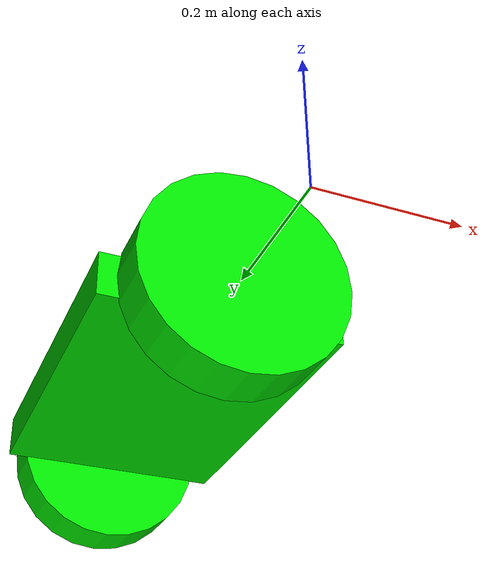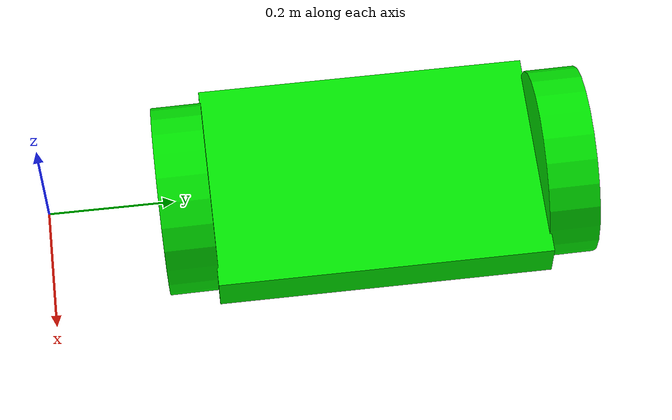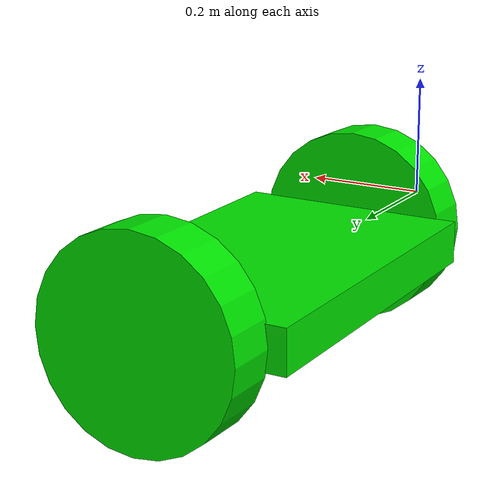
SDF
<?xml version='1.0'?>
<sdf version='1.6'>
  <model name='Green_Robot'>
    <link name='link_0'>
      <pose frame=''>0 0.519998 0.00436 0 -0 0</pose>
      <inertial>
        <mass>0.0120762</mass>
        <inertia>
          <ixx>0.000284555</ixx>
          <ixy>0</ixy>
          <ixz>0</ixz>
          <iyy>0.000129171</iyy>
          <iyz>0</iyz>
          <izz>0.000405236</izz>
        </inertia>
        <pose frame=''>0 0 0 0 -0 0</pose>
      </inertial>
      <self_collide>0</self_collide>
      <kinematic>0</kinematic>
      <visual name='visual'>
        <pose frame=''>0 0 0 0 -0 0</pose>
        <geometry>
          <box>
            <size>0.352322 0.527763 0.064937</size>
          </box>
        </geometry>
        <material>
          <lighting>1</lighting>
          <script>
            <uri>file://media/materials/scripts/gazebo.material</uri>
            <name>Gazebo/Grey</name>
          </script>
          <ambient>0 0.9 0 1</ambient>
          <diffuse>0 0.9 0 1</diffuse>
          <specular>0.01 0.01 0.01 1</specular>
          <emissive>0 0 0 1</emissive>
          <shader type='vertex'>
            <normal_map>__default__</normal_map>
          </shader>
        </material>
        <cast_shadows>1</cast_shadows>
        <transparency>0</transparency>
      </visual>
      <collision name='collision'>
        <laser_retro>0</laser_retro>
        <max_contacts>10</max_contacts>
        <pose frame=''>0 0 0 0 -0 0</pose>
        <geometry>
          <box>
            <size>0.352322 0.527763 0.064937</size>
          </box>
        </geometry>
        <surface>
          <friction>
            <ode>
              <mu>1</mu>
              <mu2>1</mu2>
              <fdir1>0 0 0</fdir1>
              <slip1>0</slip1>
              <slip2>0</slip2>
            </ode>
            <torsional>
              <coefficient>1</coefficient>
              <patch_radius>0</patch_radius>
              <surface_radius>0</surface_radius>
              <use_patch_radius>1</use_patch_radius>
              <ode>
                <slip>0</slip>
              </ode>
            </torsional>
          </friction>
          <bounce>
            <restitution_coefficient>0</restitution_coefficient>
            <threshold>1e+06</threshold>
          </bounce>
          <contact>
            <collide_without_contact>0</collide_without_contact>
            <collide_without_contact_bitmask>1</collide_without_contact_bitmask>
            <collide_bitmask>1</collide_bitmask>
            <ode>
              <soft_cfm>0</soft_cfm>
              <soft_erp>0.2</soft_erp>
              <kp>1e+13</kp>
              <kd>1</kd>
              <max_vel>0.01</max_vel>
              <min_depth>0</min_depth>
            </ode>
            <bullet>
              <split_impulse>1</split_impulse>
              <split_impulse_penetration_threshold>-0.01</split_impulse_penetration_threshold>
              <soft_cfm>0</soft_cfm>
              <soft_erp>0.2</soft_erp>
              <kp>1e+13</kp>
              <kd>1</kd>
            </bullet>
          </contact>
        </surface>
      </collision>
    </link>
    <link name='link_1_clone'>
      <pose frame=''>0 0.781457 0.003711 -1.55458 0 0</pose>
      <inertial>
        <mass>0.00604226</mass>
        <inertia>
          <ixx>3.354e-05</ixx>
          <ixy>0</ixy>
          <ixz>0</ixz>
          <iyy>3.354e-05</iyy>
          <iyz>0</iyz>
          <izz>6.156e-05</izz>
        </inertia>
        <pose frame=''>0 0 0 0 -0 0</pose>
      </inertial>
      <self_collide>0</self_collide>
      <kinematic>0</kinematic>
      <visual name='visual'>
        <pose frame=''>0 0 0.04 0 -0 0</pose>
        <geometry>
          <cylinder>
            <radius>0.15</radius>
            <length>0.08</length>
          </cylinder>
        </geometry>
        <material>
          <lighting>1</lighting>
          <script>
            <uri>file://media/materials/scripts/gazebo.material</uri>
            <name>Gazebo/Grey</name>
          </script>
          <ambient>0 0.9 0 1</ambient>
          <diffuse>0 0.9 0 1</diffuse>
          <specular>0.01 0.01 0.01 1</specular>
          <emissive>0 0 0 1</emissive>
          <shader type='vertex'>
            <normal_map>__default__</normal_map>
          </shader>
        </material>
        <cast_shadows>1</cast_shadows>
        <transparency>0</transparency>
      </visual>
      <collision name='collision'>
        <laser_retro>0</laser_retro>
        <max_contacts>10</max_contacts>
        <pose frame=''>0 0 0.04 0 -0 0</pose>
        <geometry>
          <cylinder>
            <radius>0.15</radius>
            <length>0.08</length>
          </cylinder>
        </geometry>
        <surface>
          <friction>
            <ode>
              <mu>1</mu>
              <mu2>1</mu2>
              <fdir1>0 0 0</fdir1>
              <slip1>0</slip1>
              <slip2>0</slip2>
            </ode>
            <torsional>
              <coefficient>1</coefficient>
              <patch_radius>0</patch_radius>
              <surface_radius>0</surface_radius>
              <use_patch_radius>1</use_patch_radius>
              <ode>
                <slip>0</slip>
              </ode>
            </torsional>
          </friction>
          <bounce>
            <restitution_coefficient>0</restitution_coefficient>
            <threshold>1e+06</threshold>
          </bounce>
          <contact>
            <collide_without_contact>0</collide_without_contact>
            <collide_without_contact_bitmask>1</collide_without_contact_bitmask>
            <collide_bitmask>1</collide_bitmask>
            <ode>
              <soft_cfm>0</soft_cfm>
              <soft_erp>0.2</soft_erp>
              <kp>1e+13</kp>
              <kd>1</kd>
              <max_vel>0.01</max_vel>
              <min_depth>0</min_depth>
            </ode>
            <bullet>
              <split_impulse>1</split_impulse>
              <split_impulse_penetration_threshold>-0.01</split_impulse_penetration_threshold>
              <soft_cfm>0</soft_cfm>
              <soft_erp>0.2</soft_erp>
              <kp>1e+13</kp>
              <kd>1</kd>
            </bullet>
          </contact>
        </surface>
      </collision>
    </link>
    <link name='link_1_clone_clone'>
      <pose frame=''>0 0.178549 0.003711 -1.55458 0 0</pose>
      <inertial>
        <mass>0.00604226</mass>
        <inertia>
          <ixx>3.354e-05</ixx>
          <ixy>0</ixy>
          <ixz>0</ixz>
          <iyy>3.354e-05</iyy>
          <iyz>0</iyz>
          <izz>6.156e-05</izz>
        </inertia>
        <pose frame=''>0 0 0 0 -0 0</pose>
      </inertial>
      <self_collide>0</self_collide>
      <kinematic>0</kinematic>
      <visual name='visual'>
        <pose frame=''>0 0 0.04 0 -0 0</pose>
        <geometry>
          <cylinder>
            <radius>0.15</radius>
            <length>0.08</length>
          </cylinder>
        </geometry>
        <material>
          <lighting>1</lighting>
          <script>
            <uri>file://media/materials/scripts/gazebo.material</uri>
            <name>Gazebo/Grey</name>
          </script>
          <ambient>0 0.9 0 1</ambient>
          <diffuse>0 0.9 0 1</diffuse>
          <specular>0.01 0.01 0.01 1</specular>
          <emissive>0 0 0 1</emissive>
          <shader type='vertex'>
            <normal_map>__default__</normal_map>
          </shader>
        </material>
        <cast_shadows>1</cast_shadows>
        <transparency>0</transparency>
      </visual>
      <collision name='collision'>
        <laser_retro>0</laser_retro>
        <max_contacts>10</max_contacts>
        <pose frame=''>0 0 0.04 0 -0 0</pose>
        <geometry>
          <cylinder>
            <radius>0.15</radius>
            <length>0.08</length>
          </cylinder>
        </geometry>
        <surface>
          <friction>
            <ode>
              <mu>1</mu>
              <mu2>1</mu2>
              <fdir1>0 0 0</fdir1>
              <slip1>0</slip1>
              <slip2>0</slip2>
            </ode>
            <torsional>
              <coefficient>1</coefficient>
              <patch_radius>0</patch_radius>
              <surface_radius>0</surface_radius>
              <use_patch_radius>1</use_patch_radius>
              <ode>
                <slip>0</slip>
              </ode>
            </torsional>
          </friction>
          <bounce>
            <restitution_coefficient>0</restitution_coefficient>
            <threshold>1e+06</threshold>
          </bounce>
          <contact>
            <collide_without_contact>0</collide_without_contact>
            <collide_without_contact_bitmask>1</collide_without_contact_bitmask>
            <collide_bitmask>1</collide_bitmask>
            <ode>
              <soft_cfm>0</soft_cfm>
              <soft_erp>0.2</soft_erp>
              <kp>1e+13</kp>
              <kd>1</kd>
              <max_vel>0.01</max_vel>
              <min_depth>0</min_depth>
            </ode>
            <bullet>
              <split_impulse>1</split_impulse>
              <split_impulse_penetration_threshold>-0.01</split_impulse_penetration_threshold>
              <soft_cfm>0</soft_cfm>
              <soft_erp>0.2</soft_erp>
              <kp>1e+13</kp>
              <kd>1</kd>
            </bullet>
          </contact>
        </surface>
      </collision>
    </link>
    <joint name='link_0_JOINT_4' type='revolute'>
      <parent>link_0</parent>
      <child>link_1_clone</child>
      <pose frame=''>0 0 0 0 -0 0</pose>
      <axis>
        <xyz>1 0 0</xyz>
        <use_parent_model_frame>0</use_parent_model_frame>
        <limit>
          <lower>-1.79769e+308</lower>
          <upper>1.79769e+308</upper>
          <effort>-1</effort>
          <velocity>-1</velocity>
        </limit>
        <dynamics>
          <spring_reference>0</spring_reference>
          <spring_stiffness>0</spring_stiffness>
          <damping>0</damping>
          <friction>0</friction>
        </dynamics>
      </axis>
      <physics>
        <ode>
          <limit>
            <cfm>0</cfm>
            <erp>0.2</erp>
          </limit>
          <suspension>
            <cfm>0</cfm>
            <erp>0.2</erp>
          </suspension>
        </ode>
      </physics>
    </joint>
    <joint name='link_0_JOINT_5' type='revolute'>
      <parent>link_0</parent>
      <child>link_1_clone_clone</child>
      <pose frame=''>0 0 0 0 -0 0</pose>
      <axis>
        <xyz>1 0 0</xyz>
        <use_parent_model_frame>0</use_parent_model_frame>
        <limit>
          <lower>-1.79769e+308</lower>
          <upper>1.79769e+308</upper>
          <effort>-1</effort>
          <velocity>-1</velocity>
        </limit>
        <dynamics>
          <spring_reference>0</spring_reference>
          <spring_stiffness>0</spring_stiffness>
          <damping>0</damping>
          <friction>0</friction>
        </dynamics>
      </axis>
      <physics>
        <ode>
          <limit>
            <cfm>0</cfm>
            <erp>0.2</erp>
          </limit>
          <suspension>
            <cfm>0</cfm>
            <erp>0.2</erp>
          </suspension>
        </ode>
      </physics>
    </joint>
    <static>0</static>
    <allow_auto_disable>1</allow_auto_disable>
  </model>
</sdf>
